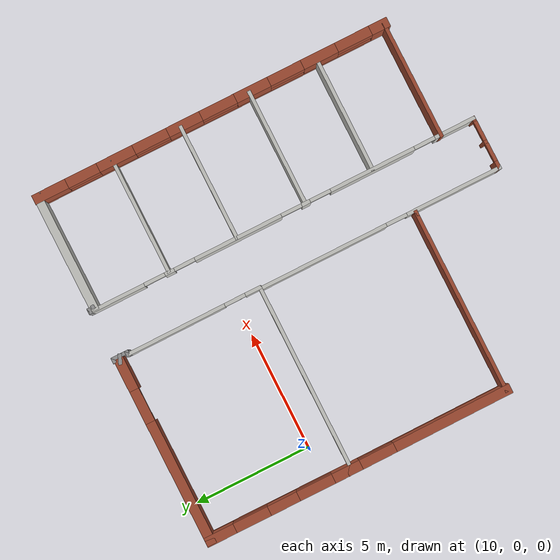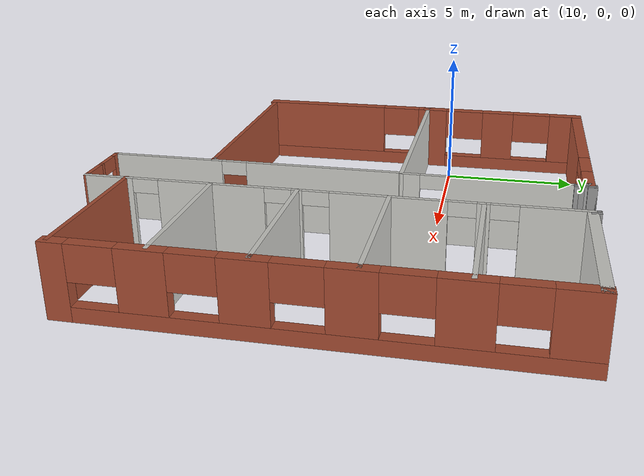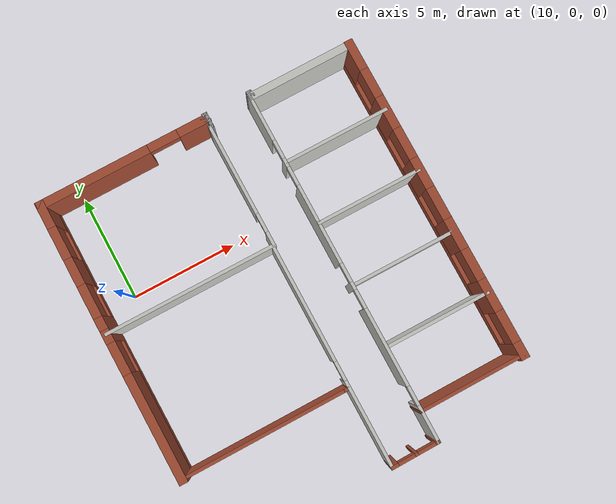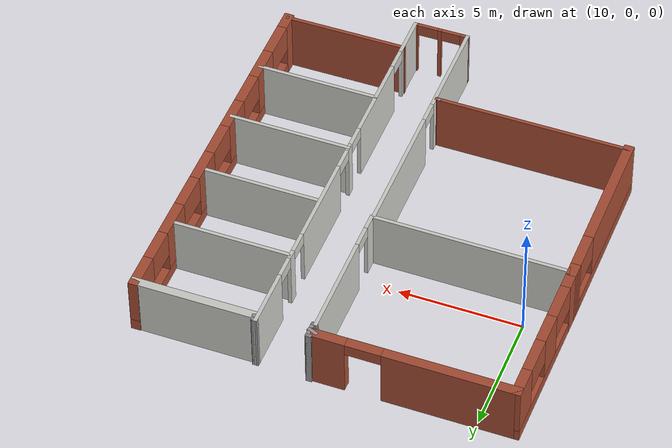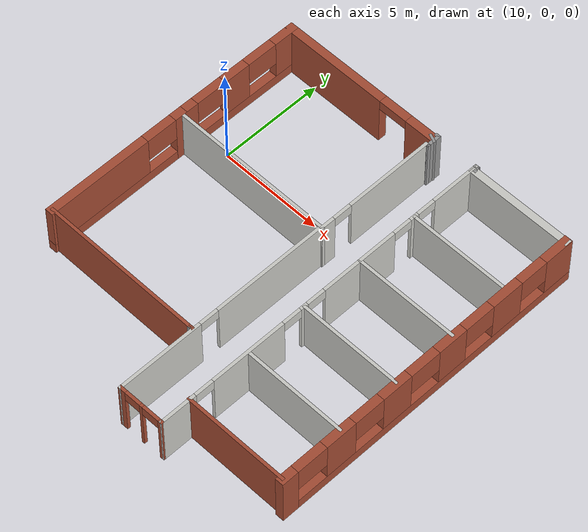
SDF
<sdf version="1.6">
 <model name="CVSSP">
  <pose>15.8584 5.8407 0 0 -0 0</pose>
  <link name="Wall_18">
   <collision name="Wall_18_Collision">
    <geometry><box><size>0.25 0.15 2.5</size></box></geometry>
    <pose>0 0 1.25 0 -0 0</pose>
   </collision>
   <visual name="Wall_18_Visual">
    <pose>0 0 1.25 0 -0 0</pose>
    <geometry><box><size>0.25 0.15 2.5</size></box></geometry>
    <material>
     <script><uri>file://media/materials/scripts/gazebo.material</uri><name>Gazebo/Grey</name></script>
     <ambient>1 1 1 1</ambient>
    </material>
   </visual>
   <pose>0.685104 -0.569755 0 0 -0 0</pose>
  </link>
  <link name="Wall_19">
   <collision name="Wall_19_Collision">
    <geometry><box><size>0.75 0.15 2.5</size></box></geometry>
    <pose>0 0 1.25 0 -0 0</pose>
   </collision>
   <visual name="Wall_19_Visual">
    <pose>0 0 1.25 0 -0 0</pose>
    <geometry><box><size>0.75 0.15 2.5</size></box></geometry>
    <material>
     <script><uri>file://media/materials/scripts/gazebo.material</uri><name>Gazebo/Grey</name></script>
     <ambient>1 1 1 1</ambient>
    </material>
   </visual>
   <pose>0.735106 -0.869755 0 0 0 -1.5708</pose>
  </link>
  <link name="Wall_20">
   <collision name="Wall_20_Collision">
    <geometry><box><size>0.15 0.15 2.5</size></box></geometry>
    <pose>0 0 1.25 0 -0 0</pose>
   </collision>
   <visual name="Wall_20_Visual">
    <pose>0 0 1.25 0 -0 0</pose>
    <geometry><box><size>0.15 0.15 2.5</size></box></geometry>
    <material>
     <script><uri>file://media/materials/scripts/gazebo.material</uri><name>Gazebo/Grey</name></script>
     <ambient>1 1 1 1</ambient>
    </material>
   </visual>
   <pose>0.735106 -1.16976 0 0 -0 0</pose>
  </link>
  <link name="Wall_21">
   <collision name="Wall_21_Collision">
    <geometry><box><size>0.15 0.15 2.5</size></box></geometry>
    <pose>0 0 1.25 0 -0 0</pose>
   </collision>
   <visual name="Wall_21_Visual">
    <pose>0 0 1.25 0 -0 0</pose>
    <geometry><box><size>0.15 0.15 2.5</size></box></geometry>
    <material>
     <script><uri>file://media/materials/scripts/gazebo.material</uri><name>Gazebo/Grey</name></script>
     <ambient>1 1 1 1</ambient>
    </material>
   </visual>
   <pose>0.735106 -1.16976 0 0 -0 0</pose>
  </link>
  <link name="Wall_22">
   <collision name="Wall_22_Collision">
    <geometry><box><size>0.25 0.15 2.5</size></box></geometry>
    <pose>0 0 1.25 0 -0 0</pose>
   </collision>
   <visual name="Wall_22_Visual">
    <pose>0 0 1.25 0 -0 0</pose>
    <geometry><box><size>0.25 0.15 2.5</size></box></geometry>
    <material>
     <script><uri>file://media/materials/scripts/gazebo.material</uri><name>Gazebo/Grey</name></script>
     <ambient>1 1 1 1</ambient>
    </material>
   </visual>
   <pose>0.685104 -1.16976 0 0 -0 3.14159</pose>
  </link>
  <link name="Wall_23">
   <pose>0.641712 -4.06859 0 0 0 -1.56852</pose>
   <visual name="Wall_23_Visual_0">
    <pose>-0.808565 0 1.25 0 -0 0</pose>
    <geometry><box><size>4.33057 0.15 2.5</size></box></geometry>
    <material>
     <script><uri>file://media/materials/scripts/gazebo.material</uri><name>Gazebo/CeilingTiled</name></script>
     <ambient>1 1 1 1</ambient>
    </material>
   </visual>
   <collision name="Wall_23_Collision_0">
    <geometry><box><size>4.33057 0.15 2.5</size></box></geometry>
    <pose>-0.808565 0 1.25 0 -0 0</pose>
   </collision>
   <visual name="Wall_23_Visual_1">
    <pose>2.61529 0 1.25 0 -0 0</pose>
    <geometry><box><size>0.71713 0.15 2.5</size></box></geometry>
    <material>
     <script><uri>file://media/materials/scripts/gazebo.material</uri><name>Gazebo/CeilingTiled</name></script>
     <ambient>1 1 1 1</ambient>
    </material>
   </visual>
   <collision name="Wall_23_Collision_1">
    <geometry><box><size>0.71713 0.15 2.5</size></box></geometry>
    <pose>2.61529 0 1.25 0 -0 0</pose>
   </collision>
   <visual name="Wall_23_Visual_2">
    <pose>1.80672 0 2.25 0 -0 0</pose>
    <geometry><box><size>0.9 0.15 0.5</size></box></geometry>
    <material>
     <script><uri>file://media/materials/scripts/gazebo.material</uri><name>Gazebo/CeilingTiled</name></script>
     <ambient>1 1 1 1</ambient>
    </material>
   </visual>
   <collision name="Wall_23_Collision_2">
    <geometry><box><size>0.9 0.15 0.5</size></box></geometry>
    <pose>1.80672 0 2.25 0 -0 0</pose>
   </collision>
  </link>
  <link name="Wall_25">
   <collision name="Wall_25_Collision">
    <geometry><box><size>8.13612 0.15 2.5</size></box></geometry>
    <pose>0 0 1.25 0 -0 0</pose>
   </collision>
   <visual name="Wall_25_Visual">
    <pose>0 0 1.25 0 -0 0</pose>
    <geometry><box><size>8.13612 0.15 2.5</size></box></geometry>
    <material>
     <script><uri>file://media/materials/scripts/gazebo.material</uri><name>Gazebo/CeilingTiled</name></script>
     <ambient>1 1 1 1</ambient>
    </material>
   </visual>
   <pose>-3.34454 -6.96007 0 0 -0 3.13975</pose>
  </link>
  <link name="Wall_26">
   <pose>-7.33019 -3.85699 0 0 -0 1.56847</pose>
   <visual name="Wall_26_Visual_0">
    <pose>-2.80009 0 1.25 0 -0 0</pose>
    <geometry><box><size>0.991247 0.4 2.5</size></box></geometry>
    <material>
     <script><uri>file://media/materials/scripts/gazebo.material</uri><name>Gazebo/Bricks</name></script>
     <ambient>1 1 1 1</ambient>
    </material>
   </visual>
   <collision name="Wall_26_Collision_0">
    <geometry><box><size>0.991247 0.4 2.5</size></box></geometry>
    <pose>-2.80009 0 1.25 0 -0 0</pose>
   </collision>
   <visual name="Wall_26_Visual_1">
    <pose>0.495623 0 0.25 0 -0 0</pose>
    <geometry><box><size>5.60019 0.4 0.5</size></box></geometry>
    <material>
     <script><uri>file://media/materials/scripts/gazebo.material</uri><name>Gazebo/Bricks</name></script>
     <ambient>1 1 1 1</ambient>
    </material>
   </visual>
   <collision name="Wall_26_Collision_1">
    <geometry><box><size>5.60019 0.4 0.5</size></box></geometry>
    <pose>0.495623 0 0.25 0 -0 0</pose>
   </collision>
   <visual name="Wall_26_Visual_2">
    <pose>-0.124967 0 1.5 0 -0 0</pose>
    <geometry><box><size>1.27901 0.4 2</size></box></geometry>
    <material>
     <script><uri>file://media/materials/scripts/gazebo.material</uri><name>Gazebo/Bricks</name></script>
     <ambient>1 1 1 1</ambient>
    </material>
   </visual>
   <collision name="Wall_26_Collision_2">
    <geometry><box><size>1.27901 0.4 2</size></box></geometry>
    <pose>-0.124967 0 1.5 0 -0 0</pose>
   </collision>
   <visual name="Wall_26_Visual_3">
    <pose>2.65501 0 1.5 0 -0 0</pose>
    <geometry><box><size>1.28142 0.4 2</size></box></geometry>
    <material>
     <script><uri>file://media/materials/scripts/gazebo.material</uri><name>Gazebo/Bricks</name></script>
     <ambient>1 1 1 1</ambient>
    </material>
   </visual>
   <collision name="Wall_26_Collision_3">
    <geometry><box><size>1.28142 0.4 2</size></box></geometry>
    <pose>2.65501 0 1.5 0 -0 0</pose>
   </collision>
   <visual name="Wall_26_Visual_4">
    <pose>-1.53447 0 1.9 0 -0 0</pose>
    <geometry><box><size>1.54 0.4 1.2</size></box></geometry>
    <material>
     <script><uri>file://media/materials/scripts/gazebo.material</uri><name>Gazebo/Bricks</name></script>
     <ambient>1 1 1 1</ambient>
    </material>
   </visual>
   <collision name="Wall_26_Collision_4">
    <geometry><box><size>1.54 0.4 1.2</size></box></geometry>
    <pose>-1.53447 0 1.9 0 -0 0</pose>
   </collision>
   <visual name="Wall_26_Visual_5">
    <pose>1.26442 0 1.9 0 -0 0</pose>
    <geometry><box><size>1.49976 0.4 1.2</size></box></geometry>
    <material>
     <script><uri>file://media/materials/scripts/gazebo.material</uri><name>Gazebo/Bricks</name></script>
     <ambient>1 1 1 1</ambient>
    </material>
   </visual>
   <collision name="Wall_26_Collision_5">
    <geometry><box><size>1.49976 0.4 1.2</size></box></geometry>
    <pose>1.26442 0 1.9 0 -0 0</pose>
   </collision>
  </link>
  <link name="Wall_27">
   <pose>-3.39406 -0.75878 0 0 -0 0.000641</pose>
   <visual name="Wall_27_Visual_0">
    <pose>-1.4201 0 1.25 0 -0 0</pose>
    <geometry><box><size>5.35679 0.4 2.5</size></box></geometry>
    <material>
     <script><uri>file://media/materials/scripts/gazebo.material</uri><name>Gazebo/Bricks</name></script>
     <ambient>1 1 1 1</ambient>
    </material>
   </visual>
   <collision name="Wall_27_Collision_0">
    <geometry><box><size>5.35679 0.4 2.5</size></box></geometry>
    <pose>-1.4201 0 1.25 0 -0 0</pose>
   </collision>
   <visual name="Wall_27_Visual_1">
    <pose>3.38693 0 1.25 0 -0 0</pose>
    <geometry><box><size>1.42313 0.4 2.5</size></box></geometry>
    <material>
     <script><uri>file://media/materials/scripts/gazebo.material</uri><name>Gazebo/Bricks</name></script>
     <ambient>1 1 1 1</ambient>
    </material>
   </visual>
   <collision name="Wall_27_Collision_1">
    <geometry><box><size>1.42313 0.4 2.5</size></box></geometry>
    <pose>3.38693 0 1.25 0 -0 0</pose>
   </collision>
   <visual name="Wall_27_Visual_2">
    <pose>1.96683 0 2.25 0 -0 0</pose>
    <geometry><box><size>1.41708 0.4 0.5</size></box></geometry>
    <material>
     <script><uri>file://media/materials/scripts/gazebo.material</uri><name>Gazebo/Bricks</name></script>
     <ambient>1 1 1 1</ambient>
    </material>
   </visual>
   <collision name="Wall_27_Collision_2">
    <geometry><box><size>1.41708 0.4 0.5</size></box></geometry>
    <pose>1.96683 0 2.25 0 -0 0</pose>
   </collision>
  </link>
  <link name="Wall_28">
   <collision name="Wall_28_Collision">
    <geometry><box><size>0.445966 0.15 2.5</size></box></geometry>
    <pose>0 0 1.25 0 -0 0</pose>
   </collision>
   <visual name="Wall_28_Visual">
    <pose>0 0 1.25 0 -0 0</pose>
    <geometry><box><size>0.445966 0.15 2.5</size></box></geometry>
    <material>
     <script><uri>file://media/materials/scripts/gazebo.material</uri><name>Gazebo/Grey</name></script>
     <ambient>1 1 1 1</ambient>
    </material>
   </visual>
   <pose>0.61117 -0.811857 0 0 0 -0.385001</pose>
  </link>
  <link name="Wall_30">
   <collision name="Wall_30_Collision">
    <geometry><box><size>0.15 0.15 2.5</size></box></geometry>
    <pose>0 0 1.25 0 -0 0</pose>
   </collision>
   <visual name="Wall_30_Visual">
    <pose>0 0 1.25 0 -0 0</pose>
    <geometry><box><size>0.15 0.15 2.5</size></box></geometry>
    <material>
     <script><uri>file://media/materials/scripts/gazebo.material</uri><name>Gazebo/Grey</name></script>
     <ambient>1 1 1 1</ambient>
    </material>
   </visual>
   <pose>2.87905 -0.598663 0 0 -0 0</pose>
  </link>
  <link name="Wall_31">
   <collision name="Wall_31_Collision">
    <geometry><box><size>0.25 0.15 2.5</size></box></geometry>
    <pose>0 0 1.25 0 -0 0</pose>
   </collision>
   <visual name="Wall_31_Visual">
    <pose>0 0 1.25 0 -0 0</pose>
    <geometry><box><size>0.25 0.15 2.5</size></box></geometry>
    <material>
     <script><uri>file://media/materials/scripts/gazebo.material</uri><name>Gazebo/Grey</name></script>
     <ambient>1 1 1 1</ambient>
    </material>
   </visual>
   <pose>2.82905 -0.598663 0 0 -0 3.14159</pose>
  </link>
  <link name="Wall_32">
   <pose>2.78049 -9.01607 0 0 0 -1.57063</pose>
   <visual name="Wall_32_Visual_0">
    <pose>-7.26942 0 1.25 0 -0 0</pose>
    <geometry><box><size>2.44597 0.15 2.5</size></box></geometry>
    <material>
     <script><uri>file://media/materials/scripts/gazebo.material</uri><name>Gazebo/CeilingTiled</name></script>
     <ambient>1 1 1 1</ambient>
    </material>
   </visual>
   <collision name="Wall_32_Collision_0">
    <geometry><box><size>2.44597 0.15 2.5</size></box></geometry>
    <pose>-7.26942 0 1.25 0 -0 0</pose>
   </collision>
   <visual name="Wall_32_Visual_1">
    <pose>-4.93973 0 1.25 0 -0 0</pose>
    <geometry><box><size>0.413404 0.15 2.5</size></box></geometry>
    <material>
     <script><uri>file://media/materials/scripts/gazebo.material</uri><name>Gazebo/CeilingTiled</name></script>
     <ambient>1 1 1 1</ambient>
    </material>
   </visual>
   <collision name="Wall_32_Collision_1">
    <geometry><box><size>0.413404 0.15 2.5</size></box></geometry>
    <pose>-4.93973 0 1.25 0 -0 0</pose>
   </collision>
   <visual name="Wall_32_Visual_2">
    <pose>-1.93273 0 1.25 0 -0 0</pose>
    <geometry><box><size>3.80061 0.15 2.5</size></box></geometry>
    <material>
     <script><uri>file://media/materials/scripts/gazebo.material</uri><name>Gazebo/CeilingTiled</name></script>
     <ambient>1 1 1 1</ambient>
    </material>
   </visual>
   <collision name="Wall_32_Collision_2">
    <geometry><box><size>3.80061 0.15 2.5</size></box></geometry>
    <pose>-1.93273 0 1.25 0 -0 0</pose>
   </collision>
   <visual name="Wall_32_Visual_3">
    <pose>1.05123 0 1.25 0 -0 0</pose>
    <geometry><box><size>0.36732 0.15 2.5</size></box></geometry>
    <material>
     <script><uri>file://media/materials/scripts/gazebo.material</uri><name>Gazebo/CeilingTiled</name></script>
     <ambient>1 1 1 1</ambient>
    </material>
   </visual>
   <collision name="Wall_32_Collision_3">
    <geometry><box><size>0.36732 0.15 2.5</size></box></geometry>
    <pose>1.05123 0 1.25 0 -0 0</pose>
   </collision>
   <visual name="Wall_32_Visual_4">
    <pose>3.97759 0 1.25 0 -0 0</pose>
    <geometry><box><size>3.68539 0.15 2.5</size></box></geometry>
    <material>
     <script><uri>file://media/materials/scripts/gazebo.material</uri><name>Gazebo/CeilingTiled</name></script>
     <ambient>1 1 1 1</ambient>
    </material>
   </visual>
   <collision name="Wall_32_Collision_4">
    <geometry><box><size>3.68539 0.15 2.5</size></box></geometry>
    <pose>3.97759 0 1.25 0 -0 0</pose>
   </collision>
   <visual name="Wall_32_Visual_5">
    <pose>7.60635 0 1.25 0 -0 0</pose>
    <geometry><box><size>1.77213 0.15 2.5</size></box></geometry>
    <material>
     <script><uri>file://media/materials/scripts/gazebo.material</uri><name>Gazebo/CeilingTiled</name></script>
     <ambient>1 1 1 1</ambient>
    </material>
   </visual>
   <collision name="Wall_32_Collision_5">
    <geometry><box><size>1.77213 0.15 2.5</size></box></geometry>
    <pose>7.60635 0 1.25 0 -0 0</pose>
   </collision>
   <visual name="Wall_32_Visual_6">
    <pose>-5.59644 0 2.25 0 -0 0</pose>
    <geometry><box><size>0.9 0.15 0.5</size></box></geometry>
    <material>
     <script><uri>file://media/materials/scripts/gazebo.material</uri><name>Gazebo/CeilingTiled</name></script>
     <ambient>1 1 1 1</ambient>
    </material>
   </visual>
   <collision name="Wall_32_Collision_6">
    <geometry><box><size>0.9 0.15 0.5</size></box></geometry>
    <pose>-5.59644 0 2.25 0 -0 0</pose>
   </collision>
   <visual name="Wall_32_Visual_7">
    <pose>-4.28303 0 2.25 0 -0 0</pose>
    <geometry><box><size>0.9 0.15 0.5</size></box></geometry>
    <material>
     <script><uri>file://media/materials/scripts/gazebo.material</uri><name>Gazebo/CeilingTiled</name></script>
     <ambient>1 1 1 1</ambient>
    </material>
   </visual>
   <collision name="Wall_32_Collision_7">
    <geometry><box><size>0.9 0.15 0.5</size></box></geometry>
    <pose>-4.28303 0 2.25 0 -0 0</pose>
   </collision>
   <visual name="Wall_32_Visual_8">
    <pose>0.417572 0 2.25 0 -0 0</pose>
    <geometry><box><size>0.9 0.15 0.5</size></box></geometry>
    <material>
     <script><uri>file://media/materials/scripts/gazebo.material</uri><name>Gazebo/CeilingTiled</name></script>
     <ambient>1 1 1 1</ambient>
    </material>
   </visual>
   <collision name="Wall_32_Collision_8">
    <geometry><box><size>0.9 0.15 0.5</size></box></geometry>
    <pose>0.417572 0 2.25 0 -0 0</pose>
   </collision>
   <visual name="Wall_32_Visual_9">
    <pose>1.68489 0 2.25 0 -0 0</pose>
    <geometry><box><size>0.9 0.15 0.5</size></box></geometry>
    <material>
     <script><uri>file://media/materials/scripts/gazebo.material</uri><name>Gazebo/CeilingTiled</name></script>
     <ambient>1 1 1 1</ambient>
    </material>
   </visual>
   <collision name="Wall_32_Collision_9">
    <geometry><box><size>0.9 0.15 0.5</size></box></geometry>
    <pose>1.68489 0 2.25 0 -0 0</pose>
   </collision>
   <visual name="Wall_32_Visual_10">
    <pose>6.27029 0 2.25 0 -0 0</pose>
    <geometry><box><size>0.9 0.15 0.5</size></box></geometry>
    <material>
     <script><uri>file://media/materials/scripts/gazebo.material</uri><name>Gazebo/CeilingTiled</name></script>
     <ambient>1 1 1 1</ambient>
    </material>
   </visual>
   <collision name="Wall_32_Collision_10">
    <geometry><box><size>0.9 0.15 0.5</size></box></geometry>
    <pose>6.27029 0 2.25 0 -0 0</pose>
   </collision>
  </link>
  <link name="Wall_34">
   <pose>1.68571 -17.4464 0 0 0 -3.12983</pose>
   <visual name="Wall_34_Visual_0">
    <pose>-1.06609 0 1.25 0 -0 0</pose>
    <geometry><box><size>0.210385 0.15 2.5</size></box></geometry>
    <material>
     <script><uri>file://media/materials/scripts/gazebo.material</uri><name>Gazebo/Bricks</name></script>
     <ambient>1 1 1 1</ambient>
    </material>
   </visual>
   <collision name="Wall_34_Collision_0">
    <geometry><box><size>0.210385 0.15 2.5</size></box></geometry>
    <pose>-1.06609 0 1.25 0 -0 0</pose>
   </collision>
   <visual name="Wall_34_Visual_1">
    <pose>-0.049739 0 1.25 0 -0 0</pose>
    <geometry><box><size>0.142322 0.15 2.5</size></box></geometry>
    <material>
     <script><uri>file://media/materials/scripts/gazebo.material</uri><name>Gazebo/Bricks</name></script>
     <ambient>1 1 1 1</ambient>
    </material>
   </visual>
   <collision name="Wall_34_Collision_1">
    <geometry><box><size>0.142322 0.15 2.5</size></box></geometry>
    <pose>-0.049739 0 1.25 0 -0 0</pose>
   </collision>
   <visual name="Wall_34_Visual_2">
    <pose>0.986298 0 1.25 0 -0 0</pose>
    <geometry><box><size>0.369978 0.15 2.5</size></box></geometry>
    <material>
     <script><uri>file://media/materials/scripts/gazebo.material</uri><name>Gazebo/Bricks</name></script>
     <ambient>1 1 1 1</ambient>
    </material>
   </visual>
   <collision name="Wall_34_Collision_2">
    <geometry><box><size>0.369978 0.15 2.5</size></box></geometry>
    <pose>0.986298 0 1.25 0 -0 0</pose>
   </collision>
   <visual name="Wall_34_Visual_3">
    <pose>-0.5409 0 2.25 0 -0 0</pose>
    <geometry><box><size>0.840001 0.15 0.5</size></box></geometry>
    <material>
     <script><uri>file://media/materials/scripts/gazebo.material</uri><name>Gazebo/Bricks</name></script>
     <ambient>1 1 1 1</ambient>
    </material>
   </visual>
   <collision name="Wall_34_Collision_3">
    <geometry><box><size>0.840001 0.15 0.5</size></box></geometry>
    <pose>-0.5409 0 2.25 0 -0 0</pose>
   </collision>
   <visual name="Wall_34_Visual_4">
    <pose>0.411365 0 2.25 0 -0 0</pose>
    <geometry><box><size>0.779887 0.15 0.5</size></box></geometry>
    <material>
     <script><uri>file://media/materials/scripts/gazebo.material</uri><name>Gazebo/Bricks</name></script>
     <ambient>1 1 1 1</ambient>
    </material>
   </visual>
   <collision name="Wall_34_Collision_4">
    <geometry><box><size>0.779887 0.15 0.5</size></box></geometry>
    <pose>0.411365 0 2.25 0 -0 0</pose>
   </collision>
  </link>
  <link name="Wall_36">
   <pose>0.588774 -12.2623 0 0 -0 1.57094</pose>
   <visual name="Wall_36_Visual_0">
    <pose>-3.20337 0 1.25 0 -0 0</pose>
    <geometry><box><size>4.13715 0.15 2.5</size></box></geometry>
    <material>
     <script><uri>file://media/materials/scripts/gazebo.material</uri><name>Gazebo/CeilingTiled</name></script>
     <ambient>1 1 1 1</ambient>
    </material>
   </visual>
   <collision name="Wall_36_Collision_0">
    <geometry><box><size>4.13715 0.15 2.5</size></box></geometry>
    <pose>-3.20337 0 1.25 0 -0 0</pose>
   </collision>
   <visual name="Wall_36_Visual_1">
    <pose>2.51858 0 1.25 0 -0 0</pose>
    <geometry><box><size>5.50674 0.15 2.5</size></box></geometry>
    <material>
     <script><uri>file://media/materials/scripts/gazebo.material</uri><name>Gazebo/CeilingTiled</name></script>
     <ambient>1 1 1 1</ambient>
    </material>
   </visual>
   <collision name="Wall_36_Collision_1">
    <geometry><box><size>5.50674 0.15 2.5</size></box></geometry>
    <pose>2.51858 0 1.25 0 -0 0</pose>
   </collision>
   <visual name="Wall_36_Visual_2">
    <pose>-0.684794 0 2.25 0 -0 0</pose>
    <geometry><box><size>0.9 0.15 0.5</size></box></geometry>
    <material>
     <script><uri>file://media/materials/scripts/gazebo.material</uri><name>Gazebo/CeilingTiled</name></script>
     <ambient>1 1 1 1</ambient>
    </material>
   </visual>
   <collision name="Wall_36_Collision_2">
    <geometry><box><size>0.9 0.15 0.5</size></box></geometry>
    <pose>-0.684794 0 2.25 0 -0 0</pose>
   </collision>
  </link>
  <link name="Wall_38">
   <pose>-7.32392 -10.3535 0 0 0 -1.56683</pose>
   <visual name="Wall_38_Visual_0">
    <pose>-3.29502 0 1.25 0 -0 0</pose>
    <geometry><box><size>0.611705 0.4 2.5</size></box></geometry>
    <material>
     <script><uri>file://media/materials/scripts/gazebo.material</uri><name>Gazebo/Bricks</name></script>
     <ambient>1 1 1 1</ambient>
    </material>
   </visual>
   <collision name="Wall_38_Collision_0">
    <geometry><box><size>0.611705 0.4 2.5</size></box></geometry>
    <pose>-3.29502 0 1.25 0 -0 0</pose>
   </collision>
   <visual name="Wall_38_Visual_1">
    <pose>0.305853 0 0.25 0 -0 0</pose>
    <geometry><box><size>6.59004 0.4 0.5</size></box></geometry>
    <material>
     <script><uri>file://media/materials/scripts/gazebo.material</uri><name>Gazebo/Bricks</name></script>
     <ambient>1 1 1 1</ambient>
    </material>
   </visual>
   <collision name="Wall_38_Collision_1">
    <geometry><box><size>6.59004 0.4 0.5</size></box></geometry>
    <pose>0.305853 0 0.25 0 -0 0</pose>
   </collision>
   <visual name="Wall_38_Visual_2">
    <pose>1.05593 0 1.5 0 -0 0</pose>
    <geometry><box><size>5.08989 0.4 2</size></box></geometry>
    <material>
     <script><uri>file://media/materials/scripts/gazebo.material</uri><name>Gazebo/Bricks</name></script>
     <ambient>1 1 1 1</ambient>
    </material>
   </visual>
   <collision name="Wall_38_Collision_2">
    <geometry><box><size>5.08989 0.4 2</size></box></geometry>
    <pose>1.05593 0 1.5 0 -0 0</pose>
   </collision>
   <visual name="Wall_38_Visual_3">
    <pose>-2.23909 0 1.9 0 -0 0</pose>
    <geometry><box><size>1.50015 0.4 1.2</size></box></geometry>
    <material>
     <script><uri>file://media/materials/scripts/gazebo.material</uri><name>Gazebo/Bricks</name></script>
     <ambient>1 1 1 1</ambient>
    </material>
   </visual>
   <collision name="Wall_38_Collision_3">
    <geometry><box><size>1.50015 0.4 1.2</size></box></geometry>
    <pose>-2.23909 0 1.9 0 -0 0</pose>
   </collision>
  </link>
  <link name="Wall_45">
   <collision name="Wall_45_Collision">
    <geometry><box><size>0.15 0.15 2.5</size></box></geometry>
    <pose>0 0 1.25 0 -0 0</pose>
   </collision>
   <visual name="Wall_45_Visual">
    <pose>0 0 1.25 0 -0 0</pose>
    <geometry><box><size>0.15 0.15 2.5</size></box></geometry>
    <material>
     <script><uri>file://media/materials/scripts/gazebo.material</uri><name>Gazebo/Grey</name></script>
     <ambient>1 1 1 1</ambient>
    </material>
   </visual>
   <pose>0.411396 -13.7505 0 0 -0 0</pose>
  </link>
  <link name="Wall_48">
   <collision name="Wall_48_Collision">
    <geometry><box><size>7.8784 0.15 2.5</size></box></geometry>
    <pose>0 0 1.25 0 -0 0</pose>
   </collision>
   <visual name="Wall_48_Visual">
    <pose>0 0 1.25 0 -0 0</pose>
    <geometry><box><size>7.8784 0.15 2.5</size></box></geometry>
    <material>
     <script><uri>file://media/materials/scripts/gazebo.material</uri><name>Gazebo/Bricks</name></script>
     <ambient>1 1 1 1</ambient>
    </material>
   </visual>
   <pose>-3.44626 -13.7524 0 0 -0 0.000504</pose>
  </link>
  <link name="Wall_49">
   <collision name="Wall_49_Collision">
    <geometry><box><size>0.25 0.15 2.5</size></box></geometry>
    <pose>0 0 1.25 0 -0 0</pose>
   </collision>
   <visual name="Wall_49_Visual">
    <pose>0 0 1.25 0 -0 0</pose>
    <geometry><box><size>0.25 0.15 2.5</size></box></geometry>
    <material>
     <script><uri>file://media/materials/scripts/gazebo.material</uri><name>Gazebo/Bricks</name></script>
     <ambient>1 1 1 1</ambient>
    </material>
   </visual>
   <pose>0.467934 -13.7505 0 0 -0 0</pose>
  </link>
  <link name="Wall_51">
   <collision name="Wall_51_Collision">
    <geometry><box><size>5.04649 0.15 2.5</size></box></geometry>
    <pose>0 0 1.25 0 -0 0</pose>
   </collision>
   <visual name="Wall_51_Visual">
    <pose>0 0 1.25 0 -0 0</pose>
    <geometry><box><size>5.04649 0.15 2.5</size></box></geometry>
    <material>
     <script><uri>file://media/materials/scripts/gazebo.material</uri><name>Gazebo/Bricks</name></script>
     <ambient>1 1 1 1</ambient>
    </material>
   </visual>
   <pose>5.20438 -15.9904 0 0 -0 0.004769</pose>
  </link>
  <link name="Wall_53">
   <pose>7.68499 -8.38538 0 0 -0 1.56956</pose>
   <visual name="Wall_53_Visual_0">
    <pose>-7.39542 0 1.25 0 -0 0</pose>
    <geometry><box><size>0.795807 0.4 2.5</size></box></geometry>
    <material>
     <script><uri>file://media/materials/scripts/gazebo.material</uri><name>Gazebo/Bricks</name></script>
     <ambient>1 1 1 1</ambient>
    </material>
   </visual>
   <collision name="Wall_53_Collision_0">
    <geometry><box><size>0.795807 0.4 2.5</size></box></geometry>
    <pose>-7.39542 0 1.25 0 -0 0</pose>
   </collision>
   <visual name="Wall_53_Visual_1">
    <pose>0.397903 0 0.25 0 -0 0</pose>
    <geometry><box><size>14.7908 0.4 0.5</size></box></geometry>
    <material>
     <script><uri>file://media/materials/scripts/gazebo.material</uri><name>Gazebo/Bricks</name></script>
     <ambient>1 1 1 1</ambient>
    </material>
   </visual>
   <collision name="Wall_53_Collision_1">
    <geometry><box><size>14.7908 0.4 0.5</size></box></geometry>
    <pose>0.397903 0 0.25 0 -0 0</pose>
   </collision>
   <visual name="Wall_53_Visual_2">
    <pose>-4.75751 0 1.5 0 -0 0</pose>
    <geometry><box><size>1.50014 0.4 2</size></box></geometry>
    <material>
     <script><uri>file://media/materials/scripts/gazebo.material</uri><name>Gazebo/Bricks</name></script>
     <ambient>1 1 1 1</ambient>
    </material>
   </visual>
   <collision name="Wall_53_Collision_2">
    <geometry><box><size>1.50014 0.4 2</size></box></geometry>
    <pose>-4.75751 0 1.5 0 -0 0</pose>
   </collision>
   <visual name="Wall_53_Visual_3">
    <pose>-1.80198 0 1.5 0 -0 0</pose>
    <geometry><box><size>1.47708 0.4 2</size></box></geometry>
    <material>
     <script><uri>file://media/materials/scripts/gazebo.material</uri><name>Gazebo/Bricks</name></script>
     <ambient>1 1 1 1</ambient>
    </material>
   </visual>
   <collision name="Wall_53_Collision_3">
    <geometry><box><size>1.47708 0.4 2</size></box></geometry>
    <pose>-1.80198 0 1.5 0 -0 0</pose>
   </collision>
   <visual name="Wall_53_Visual_4">
    <pose>1.1764 0 1.5 0 -0 0</pose>
    <geometry><box><size>1.45391 0.4 2</size></box></geometry>
    <material>
     <script><uri>file://media/materials/scripts/gazebo.material</uri><name>Gazebo/Bricks</name></script>
     <ambient>1 1 1 1</ambient>
    </material>
   </visual>
   <collision name="Wall_53_Collision_4">
    <geometry><box><size>1.45391 0.4 2</size></box></geometry>
    <pose>1.1764 0 1.5 0 -0 0</pose>
   </collision>
   <visual name="Wall_53_Visual_5">
    <pose>4.17789 0 1.5 0 -0 0</pose>
    <geometry><box><size>1.56918 0.4 2</size></box></geometry>
    <material>
     <script><uri>file://media/materials/scripts/gazebo.material</uri><name>Gazebo/Bricks</name></script>
     <ambient>1 1 1 1</ambient>
    </material>
   </visual>
   <collision name="Wall_53_Collision_5">
    <geometry><box><size>1.56918 0.4 2</size></box></geometry>
    <pose>4.17789 0 1.5 0 -0 0</pose>
   </collision>
   <visual name="Wall_53_Visual_6">
    <pose>7.06531 0 1.5 0 -0 0</pose>
    <geometry><box><size>1.45604 0.4 2</size></box></geometry>
    <material>
     <script><uri>file://media/materials/scripts/gazebo.material</uri><name>Gazebo/Bricks</name></script>
     <ambient>1 1 1 1</ambient>
    </material>
   </visual>
   <collision name="Wall_53_Collision_6">
    <geometry><box><size>1.45604 0.4 2</size></box></geometry>
    <pose>7.06531 0 1.5 0 -0 0</pose>
   </collision>
   <visual name="Wall_53_Visual_7">
    <pose>-6.25255 0 1.9 0 -0 0</pose>
    <geometry><box><size>1.48994 0.4 1.2</size></box></geometry>
    <material>
     <script><uri>file://media/materials/scripts/gazebo.material</uri><name>Gazebo/Bricks</name></script>
     <ambient>1 1 1 1</ambient>
    </material>
   </visual>
   <collision name="Wall_53_Collision_7">
    <geometry><box><size>1.48994 0.4 1.2</size></box></geometry>
    <pose>-6.25255 0 1.9 0 -0 0</pose>
   </collision>
   <visual name="Wall_53_Visual_8">
    <pose>-3.27398 0 1.9 0 -0 0</pose>
    <geometry><box><size>1.46691 0.4 1.2</size></box></geometry>
    <material>
     <script><uri>file://media/materials/scripts/gazebo.material</uri><name>Gazebo/Bricks</name></script>
     <ambient>1 1 1 1</ambient>
    </material>
   </visual>
   <collision name="Wall_53_Collision_8">
    <geometry><box><size>1.46691 0.4 1.2</size></box></geometry>
    <pose>-3.27398 0 1.9 0 -0 0</pose>
   </collision>
   <visual name="Wall_53_Visual_9">
    <pose>-0.306996 0 1.9 0 -0 0</pose>
    <geometry><box><size>1.51289 0.4 1.2</size></box></geometry>
    <material>
     <script><uri>file://media/materials/scripts/gazebo.material</uri><name>Gazebo/Bricks</name></script>
     <ambient>1 1 1 1</ambient>
    </material>
   </visual>
   <collision name="Wall_53_Collision_9">
    <geometry><box><size>1.51289 0.4 1.2</size></box></geometry>
    <pose>-0.306996 0 1.9 0 -0 0</pose>
   </collision>
   <visual name="Wall_53_Visual_10">
    <pose>2.64833 0 1.9 0 -0 0</pose>
    <geometry><box><size>1.48994 0.4 1.2</size></box></geometry>
    <material>
     <script><uri>file://media/materials/scripts/gazebo.material</uri><name>Gazebo/Bricks</name></script>
     <ambient>1 1 1 1</ambient>
    </material>
   </visual>
   <collision name="Wall_53_Collision_10">
    <geometry><box><size>1.48994 0.4 1.2</size></box></geometry>
    <pose>2.64833 0 1.9 0 -0 0</pose>
   </collision>
   <visual name="Wall_53_Visual_11">
    <pose>5.64989 0 1.9 0 -0 0</pose>
    <geometry><box><size>1.3748 0.4 1.2</size></box></geometry>
    <material>
     <script><uri>file://media/materials/scripts/gazebo.material</uri><name>Gazebo/Bricks</name></script>
     <ambient>1 1 1 1</ambient>
    </material>
   </visual>
   <collision name="Wall_53_Collision_11">
    <geometry><box><size>1.3748 0.4 1.2</size></box></geometry>
    <pose>5.64989 0 1.9 0 -0 0</pose>
   </collision>
  </link>
  <link name="Wall_54">
   <collision name="Wall_54_Collision">
    <geometry><box><size>5.12342 0.35 2.5</size></box></geometry>
    <pose>0 0 1.25 0 -0 0</pose>
   </collision>
   <visual name="Wall_54_Visual">
    <pose>0 0 1.25 0 -0 0</pose>
    <geometry><box><size>5.12342 0.35 2.5</size></box></geometry>
    <material>
     <script><uri>file://media/materials/scripts/gazebo.material</uri><name>Gazebo/CeilingTiled</name></script>
     <ambient>1 1 1 1</ambient>
    </material>
   </visual>
   <pose>5.30799 -0.796876 0 0 0 -3.13957</pose>
  </link>
  <link name="Wall_55">
   <collision name="Wall_55_Collision">
    <geometry><box><size>0.15 0.15 2.5</size></box></geometry>
    <pose>0 0 1.25 0 -0 0</pose>
   </collision>
   <visual name="Wall_55_Visual">
    <pose>0 0 1.25 0 -0 0</pose>
    <geometry><box><size>0.15 0.15 2.5</size></box></geometry>
    <material>
     <script><uri>file://media/materials/scripts/gazebo.material</uri><name>Gazebo/Grey</name></script>
     <ambient>1 1 1 1</ambient>
    </material>
   </visual>
   <pose>2.9216 -0.781698 0 0 -0 0</pose>
  </link>
  <link name="Wall_57">
   <collision name="Wall_57_Collision">
    <geometry><box><size>5 0.15 2.5</size></box></geometry>
    <pose>0 0 1.25 0 -0 0</pose>
   </collision>
   <visual name="Wall_57_Visual">
    <pose>0 0 1.25 0 -0 0</pose>
    <geometry><box><size>5 0.15 2.5</size></box></geometry>
    <material>
     <script><uri>file://media/materials/scripts/gazebo.material</uri><name>Gazebo/CeilingTiled</name></script>
     <ambient>1 1 1 1</ambient>
    </material>
   </visual>
   <pose>5.24849 -4.05602 0 0 -0 0</pose>
  </link>
  <link name="Wall_59">
   <collision name="Wall_59_Collision">
    <geometry><box><size>5 0.15 2.5</size></box></geometry>
    <pose>0 0 1.25 0 -0 0</pose>
   </collision>
   <visual name="Wall_59_Visual">
    <pose>0 0 1.25 0 -0 0</pose>
    <geometry><box><size>5 0.15 2.5</size></box></geometry>
    <material>
     <script><uri>file://media/materials/scripts/gazebo.material</uri><name>Gazebo/CeilingTiled</name></script>
     <ambient>1 1 1 1</ambient>
    </material>
   </visual>
   <pose>5.21807 -7.03693 0 0 -0 0</pose>
  </link>
  <link name="Wall_61">
   <collision name="Wall_61_Collision">
    <geometry><box><size>5 0.15 2.5</size></box></geometry>
    <pose>0 0 1.25 0 -0 0</pose>
   </collision>
   <visual name="Wall_61_Visual">
    <pose>0 0 1.25 0 -0 0</pose>
    <geometry><box><size>5 0.15 2.5</size></box></geometry>
    <material>
     <script><uri>file://media/materials/scripts/gazebo.material</uri><name>Gazebo/CeilingTiled</name></script>
     <ambient>1 1 1 1</ambient>
    </material>
   </visual>
   <pose>5.21807 -10.0483 0 0 -0 0</pose>
  </link>
  <link name="Wall_63">
   <collision name="Wall_63_Collision">
    <geometry><box><size>5 0.15 2.5</size></box></geometry>
    <pose>0 0 1.25 0 -0 0</pose>
   </collision>
   <visual name="Wall_63_Visual">
    <pose>0 0 1.25 0 -0 0</pose>
    <geometry><box><size>5 0.15 2.5</size></box></geometry>
    <material>
     <script><uri>file://media/materials/scripts/gazebo.material</uri><name>Gazebo/CeilingTiled</name></script>
     <ambient>1 1 1 1</ambient>
    </material>
   </visual>
   <pose>5.21807 -12.9988 0 0 -0 0</pose>
  </link>
  <static>1</static>
 </model>
</sdf>
